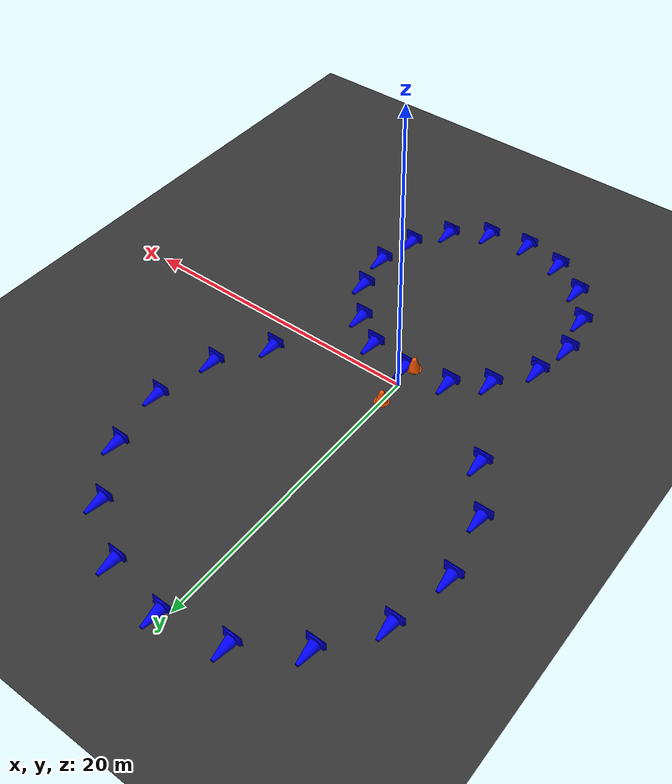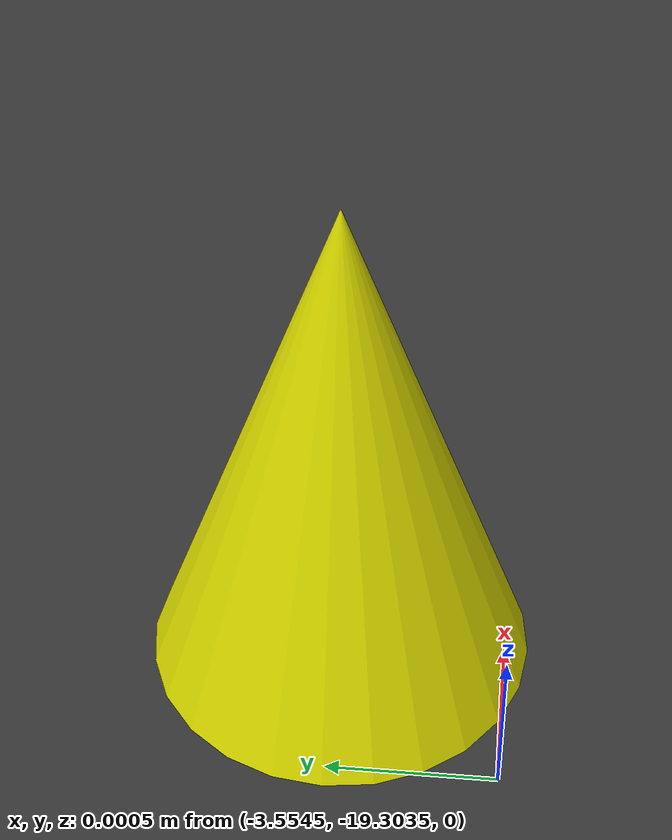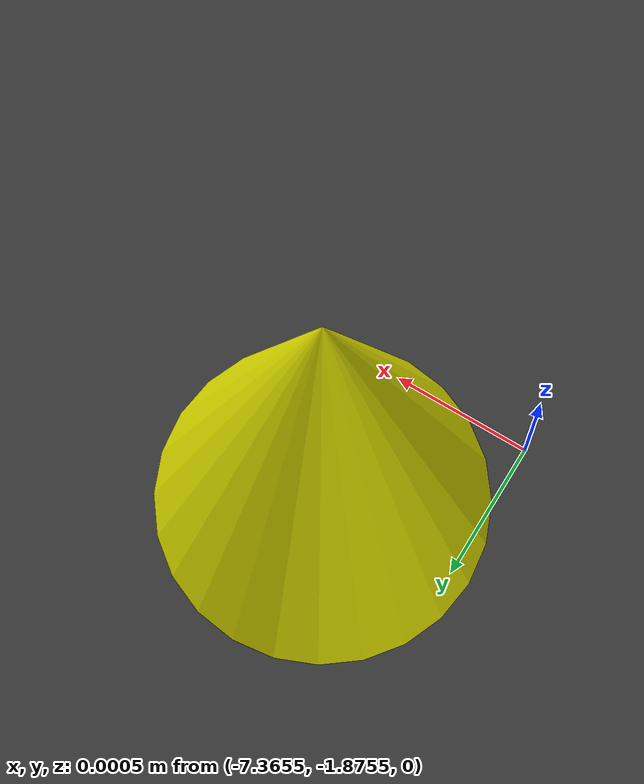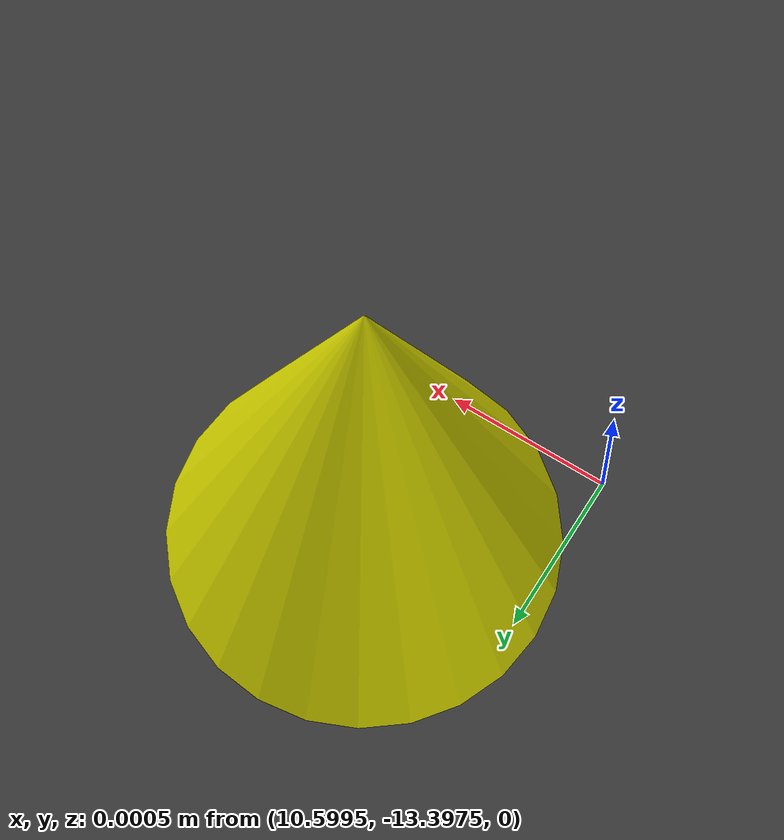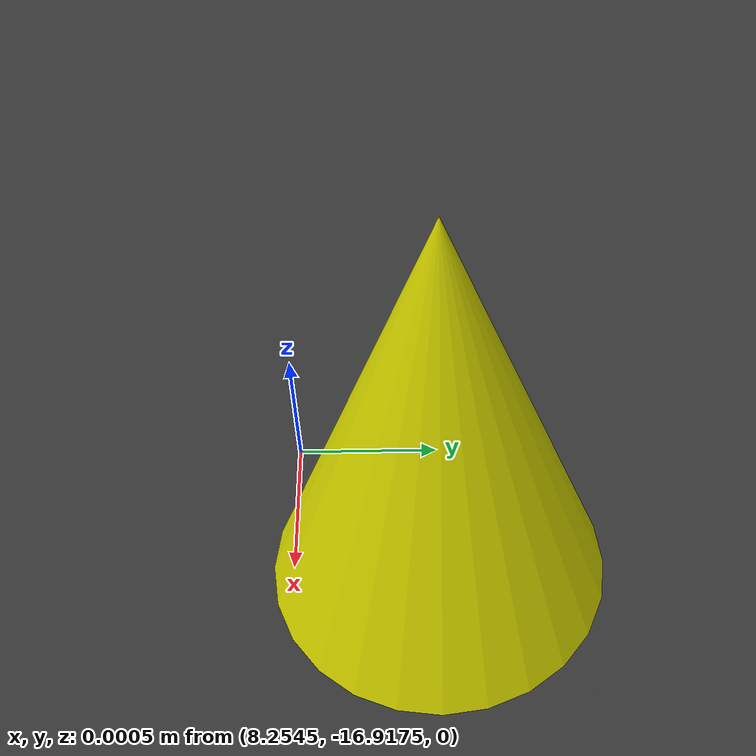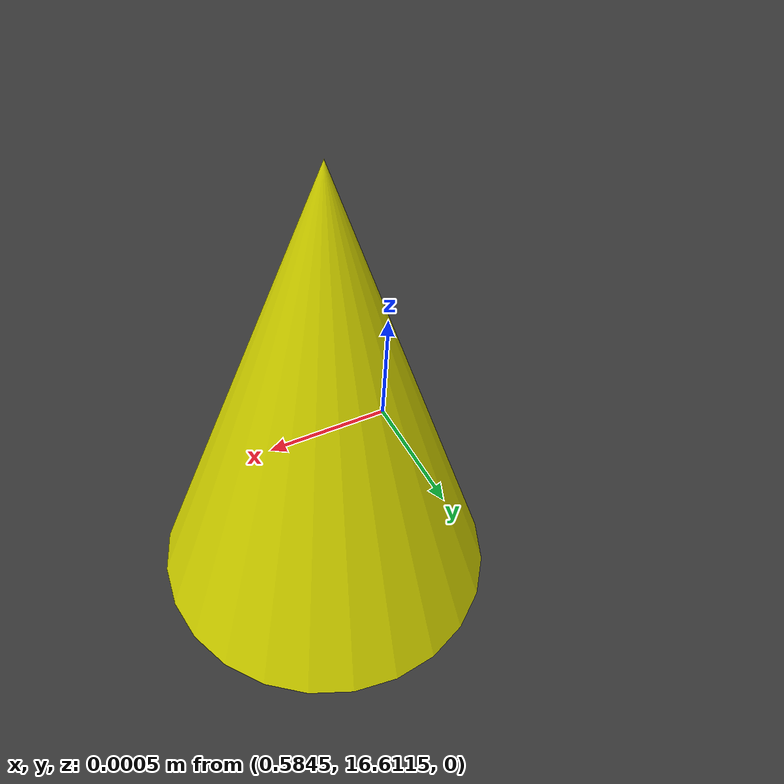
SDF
<sdf version="1.7">
 <world name="generated_world">
  <scene><sky><clouds><speed>12</speed></clouds></sky><grid>false</grid><shadows>1</shadows></scene>
  <physics type="ode">
   <max_step_size>0.001</max_step_size>
   <real_time_update_rate>1000</real_time_update_rate>
  </physics>
  <plugin filename="gz-sim-physics-system" name="gz::sim::systems::Physics"/>
  <plugin filename="gz-sim-user-commands-system" name="gz::sim::systems::UserCommands"/>
  <plugin filename="gz-sim-scene-broadcaster-system" name="gz::sim::systems::SceneBroadcaster"/>
  <plugin filename="gz-sim-contact-system" name="gz::sim::systems::Contact"/>
  <light name="sun" type="directional">
   <pose>0 0 10 0 0 0</pose>
   <diffuse>1 1 1 1</diffuse>
   <specular>0.2 0.2 0.2 1</specular>
   <direction>-0.5 0.2 -1</direction>
   <attenuation>
    <range>300</range>
    <constant>0.9</constant>
    <linear>0.01</linear>
    <quadratic>0.001</quadratic>
   </attenuation>
  </light>
  <model name="asphalt_ground">
   <static>1</static>
   <link name="link">
    <collision name="collision">
     <geometry><plane><normal>0 0 1</normal><size>300 300</size></plane></geometry>
     <surface><friction><ode><mu>100</mu><mu2>50</mu2></ode></friction></surface>
    </collision>
    <visual name="visual">
     <geometry><plane><normal>0 0 1</normal><size>300 300</size></plane></geometry>
     <material>
      <ambient>0.2 0.2 0.2 1</ambient>
      <diffuse>0.2 0.2 0.2 1</diffuse>
      <specular>0.1 0.1 0.1 1</specular>
     </material>
    </visual>
   </link>
  </model>
  <include><uri>model://cone_yellow</uri><name>cone_yellow_001</name><pose>0.561 1.750 0 0 0 0</pose></include>
  <include><uri>model://cone_blue</uri><name>cone_blue_001</name><pose>0.561 -1.750 0 0 0 0</pose></include>
  <include>
   <uri>model://cone_orange_big</uri>
   <name>cone_orange_big_001</name>
   <pose>0.000 -1.726 0 0 0 0</pose>
  </include>
  <include>
   <uri>model://cone_orange_big</uri>
   <name>cone_orange_big_002</name>
   <pose>0.000 1.726 0 0 0 0</pose>
  </include>
  <include><uri>model://cone_yellow</uri><name>cone_yellow_002</name><pose>8.459 -1.834 0 0 0 0</pose></include>
  <include>
   <uri>model://cone_yellow</uri>
   <name>cone_yellow_003</name>
   <pose>10.599 -5.100 0 0 0 0</pose>
  </include>
  <include>
   <uri>model://cone_yellow</uri>
   <name>cone_yellow_004</name>
   <pose>11.422 -9.248 0 0 0 0</pose>
  </include>
  <include>
   <uri>model://cone_yellow</uri>
   <name>cone_yellow_005</name>
   <pose>10.600 -13.397 0 0 0 0</pose>
  </include>
  <include>
   <uri>model://cone_yellow</uri>
   <name>cone_yellow_006</name>
   <pose>8.255 -16.917 0 0 0 0</pose>
  </include>
  <include>
   <uri>model://cone_yellow</uri>
   <name>cone_yellow_007</name>
   <pose>4.743 -19.275 0 0 0 0</pose>
  </include>
  <include>
   <uri>model://cone_yellow</uri>
   <name>cone_yellow_008</name>
   <pose>0.598 -20.112 0 0 0 0</pose>
  </include>
  <include>
   <uri>model://cone_yellow</uri>
   <name>cone_yellow_009</name>
   <pose>-3.554 -19.303 0 0 0 0</pose>
  </include>
  <include>
   <uri>model://cone_yellow</uri>
   <name>cone_yellow_010</name>
   <pose>-7.081 -16.969 0 0 0 0</pose>
  </include>
  <include>
   <uri>model://cone_yellow</uri>
   <name>cone_yellow_011</name>
   <pose>-9.450 -13.465 0 0 0 0</pose>
  </include>
  <include>
   <uri>model://cone_yellow</uri>
   <name>cone_yellow_012</name>
   <pose>-10.301 -9.322 0 0 0 0</pose>
  </include>
  <include>
   <uri>model://cone_yellow</uri>
   <name>cone_yellow_013</name>
   <pose>-9.505 -5.168 0 0 0 0</pose>
  </include>
  <include>
   <uri>model://cone_yellow</uri>
   <name>cone_yellow_014</name>
   <pose>-7.365 -1.875 0 0 0 0</pose>
  </include>
  <include><uri>model://cone_blue</uri><name>cone_blue_002</name><pose>5.549 -3.779 0 0 0 0</pose></include>
  <include><uri>model://cone_blue</uri><name>cone_blue_003</name><pose>7.364 -6.436 0 0 0 0</pose></include>
  <include><uri>model://cone_blue</uri><name>cone_blue_004</name><pose>7.922 -9.249 0 0 0 0</pose></include>
  <include><uri>model://cone_blue</uri><name>cone_blue_005</name><pose>7.365 -12.061 0 0 0 0</pose></include>
  <include><uri>model://cone_blue</uri><name>cone_blue_006</name><pose>5.775 -14.447 0 0 0 0</pose></include>
  <include><uri>model://cone_blue</uri><name>cone_blue_007</name><pose>3.395 -16.045 0 0 0 0</pose></include>
  <include><uri>model://cone_blue</uri><name>cone_blue_008</name><pose>0.585 -16.612 0 0 0 0</pose></include>
  <include><uri>model://cone_blue</uri><name>cone_blue_009</name><pose>-2.229 -16.063 0 0 0 0</pose></include>
  <include><uri>model://cone_blue</uri><name>cone_blue_010</name><pose>-4.620 -14.480 0 0 0 0</pose></include>
  <include><uri>model://cone_blue</uri><name>cone_blue_011</name><pose>-6.225 -12.105 0 0 0 0</pose></include>
  <include><uri>model://cone_blue</uri><name>cone_blue_012</name><pose>-6.801 -9.296 0 0 0 0</pose></include>
  <include><uri>model://cone_blue</uri><name>cone_blue_013</name><pose>-6.261 -6.481 0 0 0 0</pose></include>
  <include><uri>model://cone_blue</uri><name>cone_blue_014</name><pose>-4.468 -3.839 0 0 0 0</pose></include>
  <include><uri>model://cone_yellow</uri><name>cone_yellow_015</name><pose>5.549 3.779 0 0 0 0</pose></include>
  <include><uri>model://cone_yellow</uri><name>cone_yellow_016</name><pose>7.364 6.436 0 0 0 0</pose></include>
  <include><uri>model://cone_yellow</uri><name>cone_yellow_017</name><pose>7.922 9.249 0 0 0 0</pose></include>
  <include><uri>model://cone_yellow</uri><name>cone_yellow_018</name><pose>7.365 12.061 0 0 0 0</pose></include>
  <include><uri>model://cone_yellow</uri><name>cone_yellow_019</name><pose>5.775 14.447 0 0 0 0</pose></include>
  <include><uri>model://cone_yellow</uri><name>cone_yellow_020</name><pose>3.395 16.045 0 0 0 0</pose></include>
  <include><uri>model://cone_yellow</uri><name>cone_yellow_021</name><pose>0.585 16.612 0 0 0 0</pose></include>
  <include>
   <uri>model://cone_yellow</uri>
   <name>cone_yellow_022</name>
   <pose>-2.229 16.063 0 0 0 0</pose>
  </include>
  <include>
   <uri>model://cone_yellow</uri>
   <name>cone_yellow_023</name>
   <pose>-4.620 14.480 0 0 0 0</pose>
  </include>
  <include>
   <uri>model://cone_yellow</uri>
   <name>cone_yellow_024</name>
   <pose>-6.225 12.105 0 0 0 0</pose>
  </include>
  <include><uri>model://cone_yellow</uri><name>cone_yellow_025</name><pose>-6.801 9.296 0 0 0 0</pose></include>
  <include><uri>model://cone_yellow</uri><name>cone_yellow_026</name><pose>-6.261 6.481 0 0 0 0</pose></include>
  <include><uri>model://cone_yellow</uri><name>cone_yellow_027</name><pose>-4.468 3.839 0 0 0 0</pose></include>
  <include><uri>model://cone_blue</uri><name>cone_blue_015</name><pose>8.459 1.834 0 0 0 0</pose></include>
  <include><uri>model://cone_blue</uri><name>cone_blue_016</name><pose>10.599 5.100 0 0 0 0</pose></include>
  <include><uri>model://cone_blue</uri><name>cone_blue_017</name><pose>11.422 9.248 0 0 0 0</pose></include>
  <include><uri>model://cone_blue</uri><name>cone_blue_018</name><pose>10.600 13.397 0 0 0 0</pose></include>
  <include><uri>model://cone_blue</uri><name>cone_blue_019</name><pose>8.255 16.917 0 0 0 0</pose></include>
  <include><uri>model://cone_blue</uri><name>cone_blue_020</name><pose>4.743 19.275 0 0 0 0</pose></include>
  <include><uri>model://cone_blue</uri><name>cone_blue_021</name><pose>0.598 20.112 0 0 0 0</pose></include>
  <include><uri>model://cone_blue</uri><name>cone_blue_022</name><pose>-3.554 19.303 0 0 0 0</pose></include>
  <include><uri>model://cone_blue</uri><name>cone_blue_023</name><pose>-7.081 16.969 0 0 0 0</pose></include>
  <include><uri>model://cone_blue</uri><name>cone_blue_024</name><pose>-9.450 13.465 0 0 0 0</pose></include>
  <include><uri>model://cone_blue</uri><name>cone_blue_025</name><pose>-10.301 9.322 0 0 0 0</pose></include>
  <include><uri>model://cone_blue</uri><name>cone_blue_026</name><pose>-9.505 5.168 0 0 0 0</pose></include>
  <include><uri>model://cone_blue</uri><name>cone_blue_027</name><pose>-7.365 1.875 0 0 0 0</pose></include>
  <include><uri>model://cone_yellow</uri><name>cone_yellow_028</name><pose>-2.352 2.250 0 0 0 0</pose></include>
  <include><uri>model://cone_yellow</uri><name>cone_yellow_029</name><pose>3.448 2.250 0 0 0 0</pose></include>
  <include><uri>model://cone_blue</uri><name>cone_blue_028</name><pose>-2.352 -2.250 0 0 0 0</pose></include>
  <include><uri>model://cone_blue</uri><name>cone_blue_029</name><pose>3.448 -2.250 0 0 0 0</pose></include>
 </world>
</sdf>

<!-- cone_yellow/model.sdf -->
<sdf version="1.6">
  <model name="cone_yellow">
    <static>1</static>
    <link name="link">

      <visual name="visual">
        <pose>0 0 0 0 0 0</pose>
        <geometry>
          <mesh>
            <uri>model://cone_yellow/meshes/cone.stl</uri>
            <scale>0.005 0.005 0.005</scale>
          </mesh>
        </geometry>
        <material>
          <ambient>1.0 1.0 0.0 1</ambient>
          <diffuse>1.0 1.0 0.0 1</diffuse>
        </material>
      </visual>

      <collision name="collision">
        <pose>0 0 0.15 0 0 0</pose>
        <geometry>
          <cylinder>
            <radius>0.1</radius>
            <length>0.3</length>
          </cylinder>
        </geometry>
        <surface>
          <friction>
            <ode>
              <mu>0.9</mu> <mu2>0.9</mu2> </ode>
          </friction>
        </surface>
      </collision>

      <inertial>
        <pose>0 0 0.05 0 0 0</pose>
        <mass>1</mass>
        <inertia>
          <ixx>0.01</ixx> <iyy>0.01</iyy> <izz>0.005</izz>
          <ixy>0.0</ixy> <ixz>0.0</ixz> <iyz>0.0</iyz>
        </inertia>
      </inertial>

    </link>
  </model>
</sdf>

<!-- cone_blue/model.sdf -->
<sdf version="1.6">
  <model name="cone_blue">
    <static>1</static>
    <link name="link">

      <inertial>
        <pose>0 0 0.05 0 0 0</pose> <mass>1</mass>
        <inertia>
          <ixx>0.01</ixx> <iyy>0.01</iyy> <izz>0.005</izz>
          <ixy>0.0</ixy> <ixz>0.0</ixz> <iyz>0.0</iyz>
        </inertia>
      </inertial>

      <collision name="collision">
        <pose>0 0 0.15 0 0 0</pose>
        <geometry>
          <cylinder>
            <radius>0.1</radius>
            <length>0.3</length>
          </cylinder>
        </geometry>
      </collision>

      <visual name="visual">
        <pose>0 0 0 0 0 0</pose>
        <geometry>
          <mesh>
            <uri>model://cone_blue/meshes/cone.stl</uri>
            <scale>0.005 0.005 0.005</scale>
          </mesh>
        </geometry>
        <material>
          <ambient>0.0 0.0 1.0 1</ambient>
          <diffuse>0.0 0.0 1.0 1</diffuse>
        </material>
      </visual>

    </link>
  </model>
</sdf>

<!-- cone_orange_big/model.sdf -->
<sdf version="1.6">
  <model name="cone_orange_big">
    <static>1</static>
    <link name="link">
      <visual name="visual">
        <geometry>
          <mesh>
            <uri>model://cone_orange_big/meshes/cone.stl</uri>
            <scale>0.0112 0.0112 0.0112</scale>
          </mesh>
        </geometry>
        <material>
          <ambient>1.0 0.35 0.0 1</ambient>
	  <diffuse>1.0 0.35 0.0 1</diffuse>
        </material>
      </visual>
      <collision name="collision">
        <geometry>
          <mesh>
            <uri>model://cone_orange_big/meshes/cone.stl</uri>
            <scale>0.0112 0.0112 0.0112</scale>
          </mesh>
        </geometry>
      </collision>
      <inertial>
        <mass>0.1</mass>
        <inertia>
          <ixx>0.0001</ixx>
          <iyy>0.0001</iyy>
          <izz>0.0001</izz>
          <ixy>0.0</ixy>
          <ixz>0.0</ixz>
          <iyz>0.0</iyz>
        </inertia>
      </inertial>
    </link>
  </model>
</sdf>
